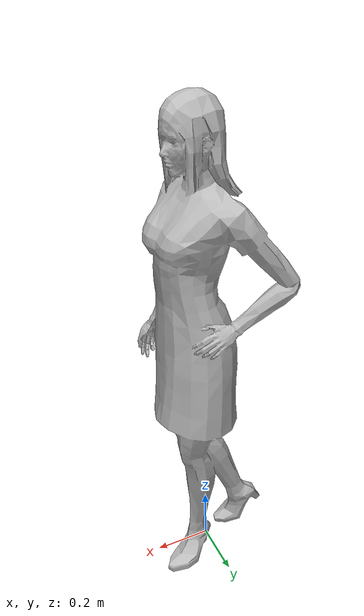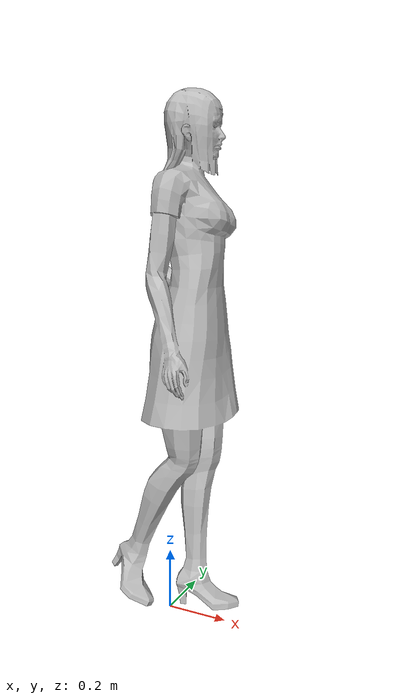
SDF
<?xml version="1.0" ?>
<sdf version="1.4">
    <model name="citizen_extras_female_02">
        <link name="link">
            <inertial>
                <mass>60</mass>
                <inertia>
                    <ixx>1.0</ixx>
                    <ixy>0.0</ixy>
                    <ixz>0.0</ixz>
                    <iyy>1.0</iyy>
                    <iyz>0.0</iyz>
                    <izz>1.0</izz>
                </inertia>
            </inertial>

            <collision name="collision">
                <pose>0 0 0 0 0 0</pose>
                <geometry>
                    <mesh>
                        <uri>model://citizen_extras_female_02/meshes/mesh.dae</uri>
                    </mesh>
                </geometry>
            </collision>

            <visual name="visual">
                <pose>0 0 0 0 0 1.8</pose>
                <geometry>
                    <mesh>
                        <uri>model://citizen_extras_female_02/meshes/mesh.dae</uri>
                    </mesh>
                </geometry>
            </visual>
        </link>

        <!-- 添加眼睛相机的链接 -->

        <!-- 其他插件 -->
        <plugin name="planar_move" filename="libgazebo_ros_planar_move.so">
            <ros>
                <namespace>/citizen_extras_female_02</namespace>
            </ros>
            <update_rate>50</update_rate>
            <cmd_vel_topic>/cmd_vel</cmd_vel_topic>
            <odom_topic>/odom</odom_topic>
        </plugin>

    </model>
</sdf>
